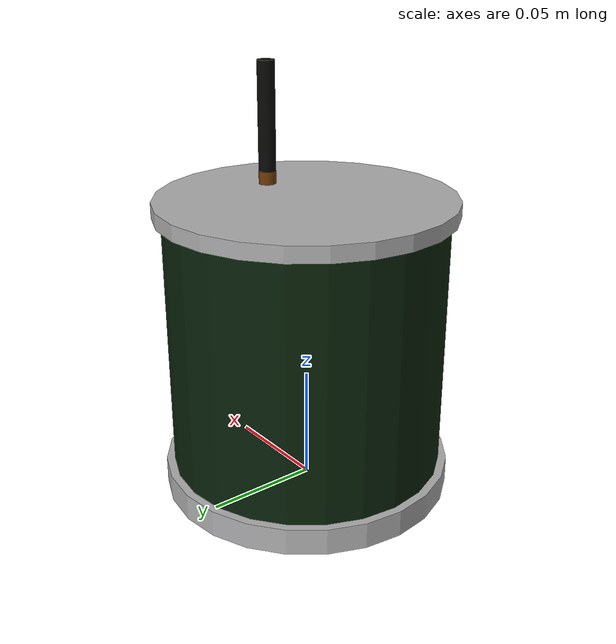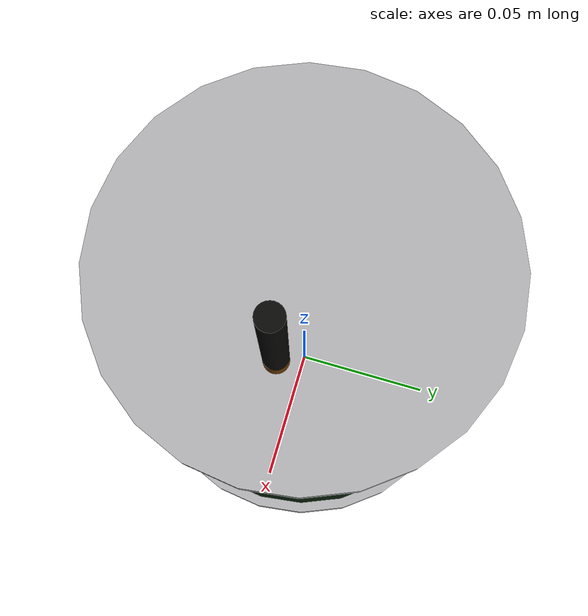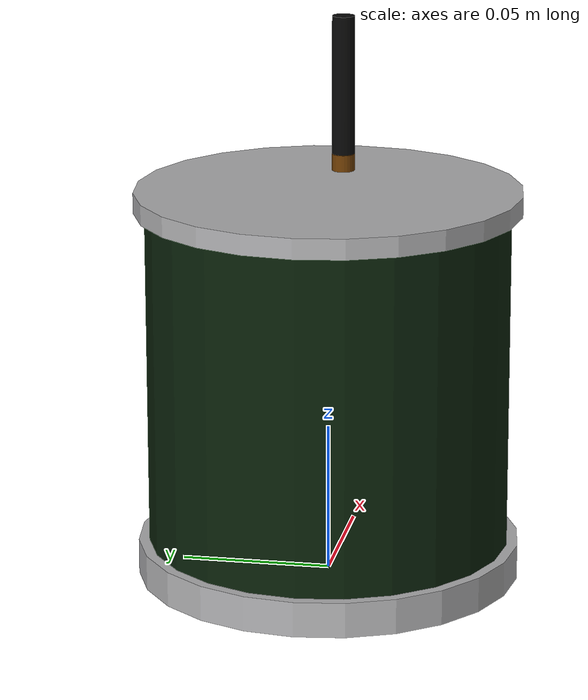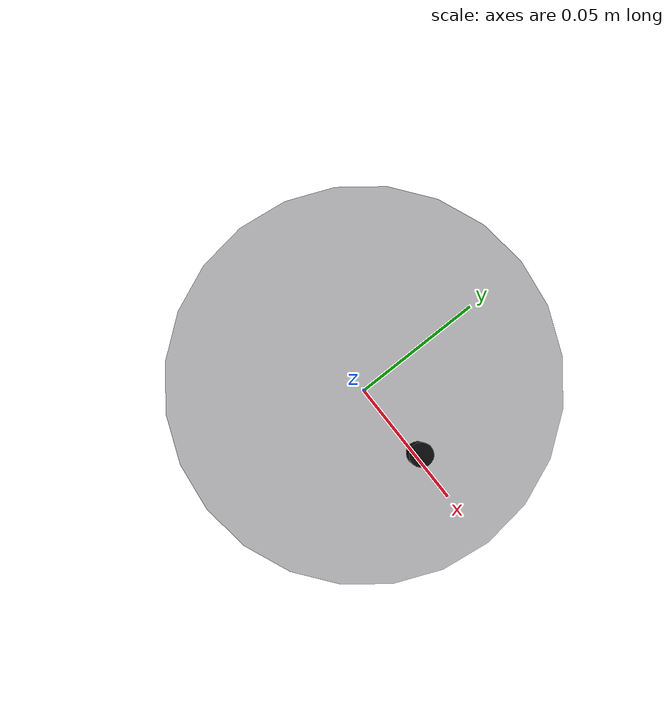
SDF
<?xml version="1.0"?>
<sdf version="1.9">
  <model name="roboboat_color_indicator_green">
    <static>true</static>
    <link name="link">
      <collision name="collision">
        <pose>0 0 0.0658 0 0 0</pose>
        <geometry>
          <cylinder><radius>0.064</radius><length>0.1315</length></cylinder>
        </geometry>
      </collision>
      <visual name="base">
        <pose>0 0 0.0059 0 0 0</pose>
        <geometry>
          <cylinder><radius>0.064</radius><length>0.0118</length></cylinder>
        </geometry>
        <material>
          <ambient>0.6793 0.6793 0.6866 1</ambient>
          <diffuse>0.6793 0.6793 0.6866 1</diffuse>
          <specular>0.1 0.1 0.1 1</specular>
        </material>
      </visual>
      <visual name="indicator">
        <pose>0 0 0.0683 0 0 0</pose>
        <geometry>
          <cylinder><radius>0.0604</radius><length>0.113</length></cylinder>
        </geometry>
        <material>
          <ambient>0.0344 0.1273 0.037 1</ambient>
          <diffuse>0.0344 0.1273 0.037 1</diffuse>
          <specular>0.1 0.1 0.1 1</specular>
        </material>
      </visual>
      <visual name="lid">
        <pose>0 0 0.1282 0 0 0</pose>
        <geometry>
          <cylinder><radius>0.064</radius><length>0.0068</length></cylinder>
        </geometry>
        <material>
          <ambient>0.6793 0.6793 0.6866 1</ambient>
          <diffuse>0.6793 0.6793 0.6866 1</diffuse>
          <specular>0.1 0.1 0.1 1</specular>
        </material>
      </visual>
      <visual name="antenna_base">
        <pose>0.0277 0 0.1344 0 0 0</pose>
        <geometry>
          <cylinder><radius>0.0038</radius><length>0.0057</length></cylinder>
        </geometry>
        <material>
          <ambient>0.4339 0.2379 0.013 1</ambient>
          <diffuse>0.4339 0.2379 0.013 1</diffuse>
          <specular>0.1 0.1 0.1 1</specular>
        </material>
      </visual>
      <visual name="antenna">
        <pose>0.0277 0 0.1607 0 0 0</pose>
        <geometry>
          <cylinder><radius>0.0038</radius><length>0.0467</length></cylinder>
        </geometry>
        <material>
          <ambient>0.0272 0.0272 0.0253 1</ambient>
          <diffuse>0.0272 0.0272 0.0253 1</diffuse>
          <specular>0.1 0.1 0.1 1</specular>
        </material>
      </visual>
    </link>
    <plugin filename="gz-sim-label-system" name="gz::sim::systems::Label">
      <label>41</label>
    </plugin>
  </model>
</sdf>
